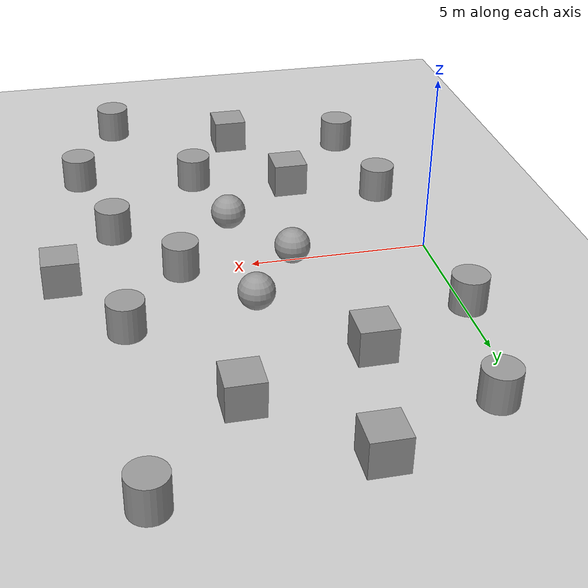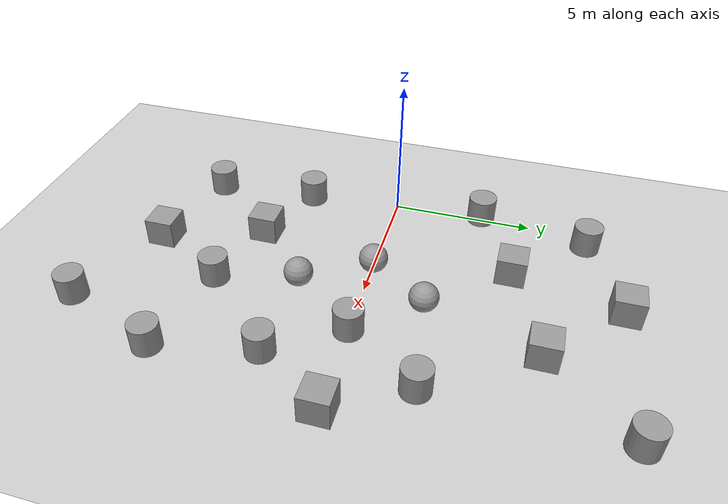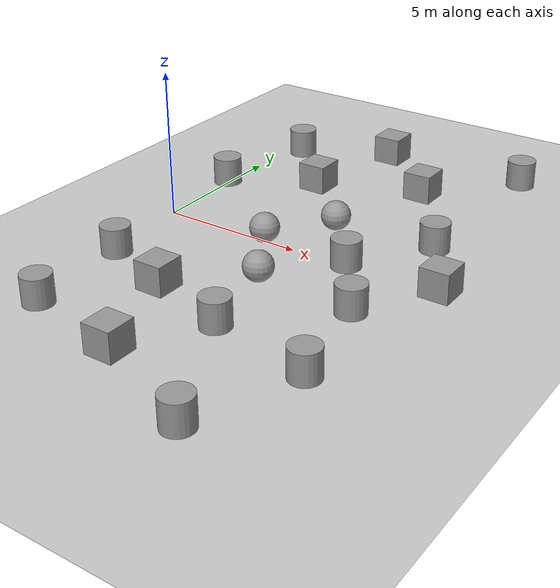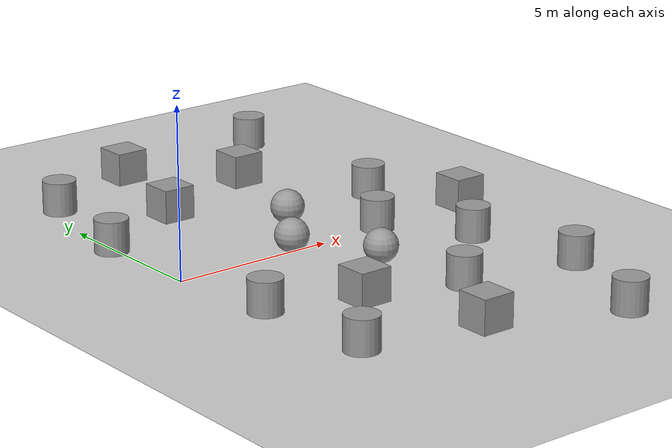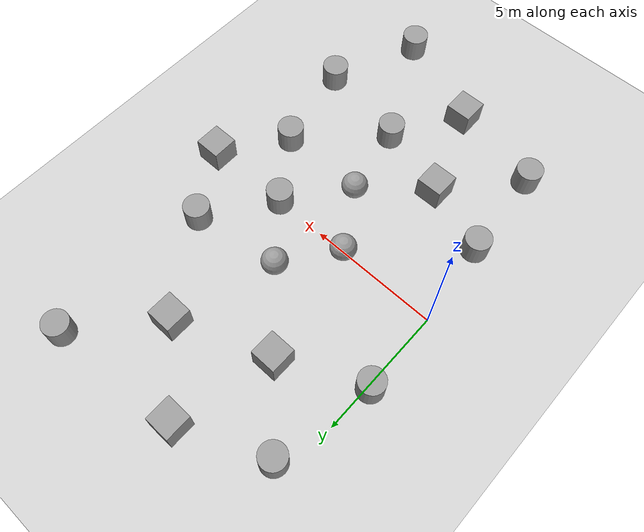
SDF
<sdf version="1.7">
 <world name="default">
  <light name="sun" type="directional">
   <pose>0 0 10 0 -0 0</pose>
   <diffuse>0.8 0.8 0.8 1</diffuse>
   <specular>0.2 0.2 0.2 1</specular>
   <attenuation>
    <range>1000</range>
    <constant>0.9</constant>
    <linear>0.01</linear>
    <quadratic>0.001</quadratic>
   </attenuation>
   <direction>-0.5 0.1 -0.9</direction>
   <spot><inner_angle>0</inner_angle><outer_angle>0</outer_angle><falloff>0</falloff></spot>
  </light>
  <model name="ground_plane">
   <static>1</static>
   <link name="link">
    <collision name="collision">
     <geometry><plane><normal>0 0 1</normal><size>100 100</size></plane></geometry>
     <surface>
      <contact><collide_bitmask>65535</collide_bitmask></contact>
      <friction><ode><mu>100</mu><mu2>50</mu2></ode></friction>
     </surface>
    </collision>
    <visual name="visual">
     <cast_shadows>0</cast_shadows>
     <geometry><plane><normal>0 0 1</normal><size>100 100</size></plane></geometry>
     <material>
      <script><uri>file://media/materials/scripts/gazebo.material</uri><name>Gazebo/Grey</name></script>
     </material>
    </visual>
   </link>
  </model>
  <gravity>0 0 -9.8</gravity>
  <magnetic_field>6e-06 2.3e-05 -4.2e-05</magnetic_field>
  <atmosphere type="adiabatic"/>
  <physics type="ode">
   <max_step_size>0.001</max_step_size>
   <real_time_factor>1</real_time_factor>
   <real_time_update_rate>1000</real_time_update_rate>
  </physics>
  <scene><ambient>0.4 0.4 0.4 1</ambient><background>0.7 0.7 0.7 1</background><shadows>1</shadows></scene>
  <audio><device>default</device></audio>
  <spherical_coordinates>
   <surface_model>EARTH_WGS84</surface_model>
   <latitude_deg>0</latitude_deg>
   <longitude_deg>0</longitude_deg>
   <elevation>0</elevation>
   <heading_deg>0</heading_deg>
  </spherical_coordinates>
  <model name="obstacle.world">
   <link name="link_0">
    <inertial>
     <mass>1</mass>
     <inertia><ixx>0.1</ixx><ixy>0</ixy><ixz>0</ixz><iyy>0.1</iyy><iyz>0</iyz><izz>0.1</izz></inertia>
    </inertial>
    <pose>-3.13284 -0.015745 0 0 -0 0</pose>
    <visual name="visual">
     <geometry><sphere><radius>0.5</radius></sphere></geometry>
     <material>
      <lighting>1</lighting>
      <script><uri>file://media/materials/scripts/gazebo.material</uri><name>Gazebo/Grey</name></script>
      <shader type="pixel"/>
     </material>
    </visual>
    <collision name="collision">
     <geometry><sphere><radius>0.5</radius></sphere></geometry>
     <surface>
      <friction>
       <ode><mu>1</mu><mu2>1</mu2><fdir1>0 0 0</fdir1><slip1>0</slip1><slip2>0</slip2></ode>
       <torsional>
        <coefficient>1</coefficient>
        <patch_radius>0</patch_radius>
        <surface_radius>0</surface_radius>
        <use_patch_radius>1</use_patch_radius>
        <ode><slip>0</slip></ode>
       </torsional>
      </friction>
      <bounce><restitution_coefficient>0</restitution_coefficient><threshold>1e+06</threshold></bounce>
      <contact>
       <collide_without_contact>0</collide_without_contact>
       <collide_without_contact_bitmask>1</collide_without_contact_bitmask>
       <collide_bitmask>1</collide_bitmask>
       <ode>
        <soft_cfm>0</soft_cfm>
        <soft_erp>0.2</soft_erp>
        <kp>1e+13</kp>
        <kd>1</kd>
        <max_vel>0.01</max_vel>
        <min_depth>0</min_depth>
       </ode>
       <bullet>
        <split_impulse>1</split_impulse>
        <split_impulse_penetration_threshold>-0.01</split_impulse_penetration_threshold>
        <soft_cfm>0</soft_cfm>
        <soft_erp>0.2</soft_erp>
        <kp>1e+13</kp>
        <kd>1</kd>
       </bullet>
      </contact>
     </surface>
    </collision>
   </link>
   <link name="link_1">
    <inertial>
     <mass>1</mass>
     <inertia><ixx>0.145833</ixx><ixy>0</ixy><ixz>0</ixz><iyy>0.145833</iyy><iyz>0</iyz><izz>0.125</izz></inertia>
    </inertial>
    <pose>-0.011051 -0.010594 0 0 -0 0</pose>
    <visual name="visual">
     <geometry><cylinder><radius>0.5</radius><length>1</length></cylinder></geometry>
     <material>
      <lighting>1</lighting>
      <script><uri>file://media/materials/scripts/gazebo.material</uri><name>Gazebo/Grey</name></script>
      <shader type="pixel"/>
     </material>
    </visual>
    <collision name="collision">
     <geometry><cylinder><radius>0.5</radius><length>1</length></cylinder></geometry>
     <surface>
      <friction>
       <ode><mu>1</mu><mu2>1</mu2><fdir1>0 0 0</fdir1><slip1>0</slip1><slip2>0</slip2></ode>
       <torsional>
        <coefficient>1</coefficient>
        <patch_radius>0</patch_radius>
        <surface_radius>0</surface_radius>
        <use_patch_radius>1</use_patch_radius>
        <ode><slip>0</slip></ode>
       </torsional>
      </friction>
      <bounce><restitution_coefficient>0</restitution_coefficient><threshold>1e+06</threshold></bounce>
      <contact>
       <collide_without_contact>0</collide_without_contact>
       <collide_without_contact_bitmask>1</collide_without_contact_bitmask>
       <collide_bitmask>1</collide_bitmask>
       <ode>
        <soft_cfm>0</soft_cfm>
        <soft_erp>0.2</soft_erp>
        <kp>1e+13</kp>
        <kd>1</kd>
        <max_vel>0.01</max_vel>
        <min_depth>0</min_depth>
       </ode>
       <bullet>
        <split_impulse>1</split_impulse>
        <split_impulse_penetration_threshold>-0.01</split_impulse_penetration_threshold>
        <soft_cfm>0</soft_cfm>
        <soft_erp>0.2</soft_erp>
        <kp>1e+13</kp>
        <kd>1</kd>
       </bullet>
      </contact>
     </surface>
    </collision>
   </link>
   <link name="link_2">
    <inertial>
     <mass>1</mass>
     <inertia>
      <ixx>0.166667</ixx>
      <ixy>0</ixy>
      <ixz>0</ixz>
      <iyy>0.166667</iyy>
      <iyz>0</iyz>
      <izz>0.166667</izz>
     </inertia>
    </inertial>
    <pose>3.23215 0.063462 0 0 -0 0</pose>
    <visual name="visual">
     <geometry><box><size>1 1 1</size></box></geometry>
     <material>
      <lighting>1</lighting>
      <script><uri>file://media/materials/scripts/gazebo.material</uri><name>Gazebo/Grey</name></script>
      <shader type="pixel"/>
     </material>
    </visual>
    <collision name="collision">
     <geometry><box><size>1 1 1</size></box></geometry>
     <surface>
      <friction>
       <ode><mu>1</mu><mu2>1</mu2><fdir1>0 0 0</fdir1><slip1>0</slip1><slip2>0</slip2></ode>
       <torsional>
        <coefficient>1</coefficient>
        <patch_radius>0</patch_radius>
        <surface_radius>0</surface_radius>
        <use_patch_radius>1</use_patch_radius>
        <ode><slip>0</slip></ode>
       </torsional>
      </friction>
      <bounce><restitution_coefficient>0</restitution_coefficient><threshold>1e+06</threshold></bounce>
      <contact>
       <collide_without_contact>0</collide_without_contact>
       <collide_without_contact_bitmask>1</collide_without_contact_bitmask>
       <collide_bitmask>1</collide_bitmask>
       <ode>
        <soft_cfm>0</soft_cfm>
        <soft_erp>0.2</soft_erp>
        <kp>1e+13</kp>
        <kd>1</kd>
        <max_vel>0.01</max_vel>
        <min_depth>0</min_depth>
       </ode>
       <bullet>
        <split_impulse>1</split_impulse>
        <split_impulse_penetration_threshold>-0.01</split_impulse_penetration_threshold>
        <soft_cfm>0</soft_cfm>
        <soft_erp>0.2</soft_erp>
        <kp>1e+13</kp>
        <kd>1</kd>
       </bullet>
      </contact>
     </surface>
    </collision>
   </link>
   <link name="link_3">
    <inertial>
     <mass>1</mass>
     <inertia><ixx>0.1</ixx><ixy>0</ixy><ixz>0</ixz><iyy>0.1</iyy><iyz>0</iyz><izz>0.1</izz></inertia>
    </inertial>
    <pose>-1.73792 -2.25954 0 0 -0 0</pose>
    <visual name="visual">
     <geometry><sphere><radius>0.5</radius></sphere></geometry>
     <material>
      <lighting>1</lighting>
      <script><uri>file://media/materials/scripts/gazebo.material</uri><name>Gazebo/Grey</name></script>
      <shader type="pixel"/>
     </material>
    </visual>
    <collision name="collision">
     <geometry><sphere><radius>0.5</radius></sphere></geometry>
     <surface>
      <friction>
       <ode><mu>1</mu><mu2>1</mu2><fdir1>0 0 0</fdir1><slip1>0</slip1><slip2>0</slip2></ode>
       <torsional>
        <coefficient>1</coefficient>
        <patch_radius>0</patch_radius>
        <surface_radius>0</surface_radius>
        <use_patch_radius>1</use_patch_radius>
        <ode><slip>0</slip></ode>
       </torsional>
      </friction>
      <bounce><restitution_coefficient>0</restitution_coefficient><threshold>1e+06</threshold></bounce>
      <contact>
       <collide_without_contact>0</collide_without_contact>
       <collide_without_contact_bitmask>1</collide_without_contact_bitmask>
       <collide_bitmask>1</collide_bitmask>
       <ode>
        <soft_cfm>0</soft_cfm>
        <soft_erp>0.2</soft_erp>
        <kp>1e+13</kp>
        <kd>1</kd>
        <max_vel>0.01</max_vel>
        <min_depth>0</min_depth>
       </ode>
       <bullet>
        <split_impulse>1</split_impulse>
        <split_impulse_penetration_threshold>-0.01</split_impulse_penetration_threshold>
        <soft_cfm>0</soft_cfm>
        <soft_erp>0.2</soft_erp>
        <kp>1e+13</kp>
        <kd>1</kd>
       </bullet>
      </contact>
     </surface>
    </collision>
   </link>
   <link name="link_4">
    <inertial>
     <mass>1</mass>
     <inertia><ixx>0.1</ixx><ixy>0</ixy><ixz>0</ixz><iyy>0.1</iyy><iyz>0</iyz><izz>0.1</izz></inertia>
    </inertial>
    <pose>-1.69793 2.03837 0 0 -0 0</pose>
    <visual name="visual">
     <geometry><sphere><radius>0.5</radius></sphere></geometry>
     <material>
      <lighting>1</lighting>
      <script><uri>file://media/materials/scripts/gazebo.material</uri><name>Gazebo/Grey</name></script>
      <shader type="pixel"/>
     </material>
    </visual>
    <collision name="collision">
     <geometry><sphere><radius>0.5</radius></sphere></geometry>
     <surface>
      <friction>
       <ode><mu>1</mu><mu2>1</mu2><fdir1>0 0 0</fdir1><slip1>0</slip1><slip2>0</slip2></ode>
       <torsional>
        <coefficient>1</coefficient>
        <patch_radius>0</patch_radius>
        <surface_radius>0</surface_radius>
        <use_patch_radius>1</use_patch_radius>
        <ode><slip>0</slip></ode>
       </torsional>
      </friction>
      <bounce><restitution_coefficient>0</restitution_coefficient><threshold>1e+06</threshold></bounce>
      <contact>
       <collide_without_contact>0</collide_without_contact>
       <collide_without_contact_bitmask>1</collide_without_contact_bitmask>
       <collide_bitmask>1</collide_bitmask>
       <ode>
        <soft_cfm>0</soft_cfm>
        <soft_erp>0.2</soft_erp>
        <kp>1e+13</kp>
        <kd>1</kd>
        <max_vel>0.01</max_vel>
        <min_depth>0</min_depth>
       </ode>
       <bullet>
        <split_impulse>1</split_impulse>
        <split_impulse_penetration_threshold>-0.01</split_impulse_penetration_threshold>
        <soft_cfm>0</soft_cfm>
        <soft_erp>0.2</soft_erp>
        <kp>1e+13</kp>
        <kd>1</kd>
       </bullet>
      </contact>
     </surface>
    </collision>
   </link>
   <link name="link_5">
    <inertial>
     <mass>1</mass>
     <inertia><ixx>0.145833</ixx><ixy>0</ixy><ixz>0</ixz><iyy>0.145833</iyy><iyz>0</iyz><izz>0.125</izz></inertia>
    </inertial>
    <pose>1.61127 -2.33825 0 0 -0 0</pose>
    <visual name="visual">
     <geometry><cylinder><radius>0.5</radius><length>1</length></cylinder></geometry>
     <material>
      <lighting>1</lighting>
      <script><uri>file://media/materials/scripts/gazebo.material</uri><name>Gazebo/Grey</name></script>
      <shader type="pixel"/>
     </material>
    </visual>
    <collision name="collision">
     <geometry><cylinder><radius>0.5</radius><length>1</length></cylinder></geometry>
     <surface>
      <friction>
       <ode><mu>1</mu><mu2>1</mu2><fdir1>0 0 0</fdir1><slip1>0</slip1><slip2>0</slip2></ode>
       <torsional>
        <coefficient>1</coefficient>
        <patch_radius>0</patch_radius>
        <surface_radius>0</surface_radius>
        <use_patch_radius>1</use_patch_radius>
        <ode><slip>0</slip></ode>
       </torsional>
      </friction>
      <bounce><restitution_coefficient>0</restitution_coefficient><threshold>1e+06</threshold></bounce>
      <contact>
       <collide_without_contact>0</collide_without_contact>
       <collide_without_contact_bitmask>1</collide_without_contact_bitmask>
       <collide_bitmask>1</collide_bitmask>
       <ode>
        <soft_cfm>0</soft_cfm>
        <soft_erp>0.2</soft_erp>
        <kp>1e+13</kp>
        <kd>1</kd>
        <max_vel>0.01</max_vel>
        <min_depth>0</min_depth>
       </ode>
       <bullet>
        <split_impulse>1</split_impulse>
        <split_impulse_penetration_threshold>-0.01</split_impulse_penetration_threshold>
        <soft_cfm>0</soft_cfm>
        <soft_erp>0.2</soft_erp>
        <kp>1e+13</kp>
        <kd>1</kd>
       </bullet>
      </contact>
     </surface>
    </collision>
   </link>
   <link name="link_6">
    <inertial>
     <mass>1</mass>
     <inertia><ixx>0.145833</ixx><ixy>0</ixy><ixz>0</ixz><iyy>0.145833</iyy><iyz>0</iyz><izz>0.125</izz></inertia>
    </inertial>
    <pose>1.73633 2.52229 0 0 -0 0</pose>
    <visual name="visual">
     <geometry><cylinder><radius>0.5</radius><length>1</length></cylinder></geometry>
     <material>
      <lighting>1</lighting>
      <script><uri>file://media/materials/scripts/gazebo.material</uri><name>Gazebo/Grey</name></script>
      <shader type="pixel"/>
     </material>
    </visual>
    <collision name="collision">
     <geometry><cylinder><radius>0.5</radius><length>1</length></cylinder></geometry>
     <surface>
      <friction>
       <ode><mu>1</mu><mu2>1</mu2><fdir1>0 0 0</fdir1><slip1>0</slip1><slip2>0</slip2></ode>
       <torsional>
        <coefficient>1</coefficient>
        <patch_radius>0</patch_radius>
        <surface_radius>0</surface_radius>
        <use_patch_radius>1</use_patch_radius>
        <ode><slip>0</slip></ode>
       </torsional>
      </friction>
      <bounce><restitution_coefficient>0</restitution_coefficient><threshold>1e+06</threshold></bounce>
      <contact>
       <collide_without_contact>0</collide_without_contact>
       <collide_without_contact_bitmask>1</collide_without_contact_bitmask>
       <collide_bitmask>1</collide_bitmask>
       <ode>
        <soft_cfm>0</soft_cfm>
        <soft_erp>0.2</soft_erp>
        <kp>1e+13</kp>
        <kd>1</kd>
        <max_vel>0.01</max_vel>
        <min_depth>0</min_depth>
       </ode>
       <bullet>
        <split_impulse>1</split_impulse>
        <split_impulse_penetration_threshold>-0.01</split_impulse_penetration_threshold>
        <soft_cfm>0</soft_cfm>
        <soft_erp>0.2</soft_erp>
        <kp>1e+13</kp>
        <kd>1</kd>
       </bullet>
      </contact>
     </surface>
    </collision>
   </link>
   <static>0</static>
   <pose>6.99306 0.048591 0.5 0 -0 0</pose>
  </model>
  <model name="unit_box">
   <pose>3.02014 -4.21684 0.499995 0 1e-05 0</pose>
   <link name="link">
    <inertial>
     <mass>1</mass>
     <inertia>
      <ixx>0.166667</ixx>
      <ixy>0</ixy>
      <ixz>0</ixz>
      <iyy>0.166667</iyy>
      <iyz>0</iyz>
      <izz>0.166667</izz>
     </inertia>
    </inertial>
    <collision name="collision"><geometry><box><size>1 1 1</size></box></geometry></collision>
    <visual name="visual">
     <geometry><box><size>1 1 1</size></box></geometry>
     <material>
      <script><name>Gazebo/Grey</name><uri>file://media/materials/scripts/gazebo.material</uri></script>
     </material>
    </visual>
   </link>
  </model>
  <model name="unit_cylinder">
   <pose>5.8398 -5.03716 0.499992 -3e-06 3e-06 0</pose>
   <link name="link">
    <inertial>
     <mass>1</mass>
     <inertia><ixx>0.145833</ixx><ixy>0</ixy><ixz>0</ixz><iyy>0.145833</iyy><iyz>0</iyz><izz>0.125</izz></inertia>
    </inertial>
    <collision name="collision">
     <geometry><cylinder><radius>0.5</radius><length>1</length></cylinder></geometry>
    </collision>
    <visual name="visual">
     <geometry><cylinder><radius>0.5</radius><length>1</length></cylinder></geometry>
     <material>
      <script><name>Gazebo/Grey</name><uri>file://media/materials/scripts/gazebo.material</uri></script>
     </material>
    </visual>
   </link>
  </model>
  <model name="unit_box_0">
   <pose>4.2683 -7.65107 0.499995 0 1e-05 0</pose>
   <link name="link">
    <inertial>
     <mass>1</mass>
     <inertia>
      <ixx>0.166667</ixx>
      <ixy>0</ixy>
      <ixz>0</ixz>
      <iyy>0.166667</iyy>
      <iyz>0</iyz>
      <izz>0.166667</izz>
     </inertia>
    </inertial>
    <collision name="collision"><geometry><box><size>1 1 1</size></box></geometry></collision>
    <visual name="visual">
     <geometry><box><size>1 1 1</size></box></geometry>
     <material>
      <script><name>Gazebo/Grey</name><uri>file://media/materials/scripts/gazebo.material</uri></script>
     </material>
    </visual>
   </link>
  </model>
  <model name="unit_cylinder_0">
   <pose>9.33923 -5.73256 0.499998 3e-06 -3e-06 0</pose>
   <link name="link">
    <inertial>
     <mass>1</mass>
     <inertia><ixx>0.145833</ixx><ixy>0</ixy><ixz>0</ixz><iyy>0.145833</iyy><iyz>0</iyz><izz>0.125</izz></inertia>
    </inertial>
    <collision name="collision">
     <geometry><cylinder><radius>0.5</radius><length>1</length></cylinder></geometry>
    </collision>
    <visual name="visual">
     <geometry><cylinder><radius>0.5</radius><length>1</length></cylinder></geometry>
     <material>
      <script><name>Gazebo/Grey</name><uri>file://media/materials/scripts/gazebo.material</uri></script>
     </material>
    </visual>
   </link>
  </model>
  <model name="unit_box_1">
   <pose>2.91845 4.63691 0.499995 0 1e-05 0</pose>
   <link name="link">
    <inertial>
     <mass>1</mass>
     <inertia>
      <ixx>0.166667</ixx>
      <ixy>0</ixy>
      <ixz>0</ixz>
      <iyy>0.166667</iyy>
      <iyz>0</iyz>
      <izz>0.166667</izz>
     </inertia>
    </inertial>
    <collision name="collision"><geometry><box><size>1 1 1</size></box></geometry></collision>
    <visual name="visual">
     <geometry><box><size>1 1 1</size></box></geometry>
     <material>
      <script><name>Gazebo/Grey</name><uri>file://media/materials/scripts/gazebo.material</uri></script>
     </material>
    </visual>
   </link>
  </model>
  <model name="unit_box_2">
   <pose>6.43969 5.99158 0.499995 -1e-05 -0 -0</pose>
   <link name="link">
    <inertial>
     <mass>1</mass>
     <inertia>
      <ixx>0.166667</ixx>
      <ixy>0</ixy>
      <ixz>0</ixz>
      <iyy>0.166667</iyy>
      <iyz>0</iyz>
      <izz>0.166667</izz>
     </inertia>
    </inertial>
    <collision name="collision"><geometry><box><size>1 1 1</size></box></geometry></collision>
    <visual name="visual">
     <geometry><box><size>1 1 1</size></box></geometry>
     <material>
      <script><name>Gazebo/Grey</name><uri>file://media/materials/scripts/gazebo.material</uri></script>
     </material>
    </visual>
   </link>
  </model>
  <model name="unit_box_3">
   <pose>3.83466 8.40263 0.499995 0 1e-05 0</pose>
   <link name="link">
    <inertial>
     <mass>1</mass>
     <inertia>
      <ixx>0.166667</ixx>
      <ixy>0</ixy>
      <ixz>0</ixz>
      <iyy>0.166667</iyy>
      <iyz>0</iyz>
      <izz>0.166667</izz>
     </inertia>
    </inertial>
    <collision name="collision"><geometry><box><size>1 1 1</size></box></geometry></collision>
    <visual name="visual">
     <geometry><box><size>1 1 1</size></box></geometry>
     <material>
      <script><name>Gazebo/Grey</name><uri>file://media/materials/scripts/gazebo.material</uri></script>
     </material>
    </visual>
   </link>
  </model>
  <model name="unit_cylinder_1">
   <pose>8.92565 8.81858 0.499992 -3e-06 4e-06 0</pose>
   <link name="link">
    <inertial>
     <mass>1</mass>
     <inertia><ixx>0.145833</ixx><ixy>0</ixy><ixz>0</ixz><iyy>0.145833</iyy><iyz>0</iyz><izz>0.125</izz></inertia>
    </inertial>
    <collision name="collision">
     <geometry><cylinder><radius>0.5</radius><length>1</length></cylinder></geometry>
    </collision>
    <visual name="visual">
     <geometry><cylinder><radius>0.5</radius><length>1</length></cylinder></geometry>
     <material>
      <script><name>Gazebo/Grey</name><uri>file://media/materials/scripts/gazebo.material</uri></script>
     </material>
    </visual>
   </link>
  </model>
  <model name="unit_cylinder_2">
   <pose>7.97183 -9.18913 0.499992 -3e-06 -4e-06 -0</pose>
   <link name="link">
    <inertial>
     <mass>1</mass>
     <inertia><ixx>0.145833</ixx><ixy>0</ixy><ixz>0</ixz><iyy>0.145833</iyy><iyz>0</iyz><izz>0.125</izz></inertia>
    </inertial>
    <collision name="collision">
     <geometry><cylinder><radius>0.5</radius><length>1</length></cylinder></geometry>
    </collision>
    <visual name="visual">
     <geometry><cylinder><radius>0.5</radius><length>1</length></cylinder></geometry>
     <material>
      <script><name>Gazebo/Grey</name><uri>file://media/materials/scripts/gazebo.material</uri></script>
     </material>
    </visual>
   </link>
  </model>
  <model name="unit_cylinder_3">
   <pose>0.425124 -3.26464 0.499993 -3e-06 -3e-06 0</pose>
   <link name="link">
    <inertial>
     <mass>1</mass>
     <inertia><ixx>0.145833</ixx><ixy>0</ixy><ixz>0</ixz><iyy>0.145833</iyy><iyz>0</iyz><izz>0.125</izz></inertia>
    </inertial>
    <collision name="collision">
     <geometry><cylinder><radius>0.5</radius><length>1</length></cylinder></geometry>
    </collision>
    <visual name="visual">
     <geometry><cylinder><radius>0.5</radius><length>1</length></cylinder></geometry>
     <material>
      <script><name>Gazebo/Grey</name><uri>file://media/materials/scripts/gazebo.material</uri></script>
     </material>
    </visual>
   </link>
  </model>
  <model name="unit_cylinder_4">
   <pose>0.727452 -6.89707 0.499997 3e-06 4e-06 -0</pose>
   <link name="link">
    <inertial>
     <mass>1</mass>
     <inertia><ixx>0.145833</ixx><ixy>0</ixy><ixz>0</ixz><iyy>0.145833</iyy><iyz>0</iyz><izz>0.125</izz></inertia>
    </inertial>
    <collision name="collision">
     <geometry><cylinder><radius>0.5</radius><length>1</length></cylinder></geometry>
    </collision>
    <visual name="visual">
     <geometry><cylinder><radius>0.5</radius><length>1</length></cylinder></geometry>
     <material>
      <script><name>Gazebo/Grey</name><uri>file://media/materials/scripts/gazebo.material</uri></script>
     </material>
    </visual>
   </link>
  </model>
  <model name="unit_cylinder_5">
   <pose>-0.099596 3.19665 0.499997 3e-06 4e-06 -0</pose>
   <link name="link">
    <inertial>
     <mass>1</mass>
     <inertia><ixx>0.145833</ixx><ixy>0</ixy><ixz>0</ixz><iyy>0.145833</iyy><iyz>0</iyz><izz>0.125</izz></inertia>
    </inertial>
    <collision name="collision">
     <geometry><cylinder><radius>0.5</radius><length>1</length></cylinder></geometry>
    </collision>
    <visual name="visual">
     <geometry><cylinder><radius>0.5</radius><length>1</length></cylinder></geometry>
     <material>
      <script><name>Gazebo/Grey</name><uri>file://media/materials/scripts/gazebo.material</uri></script>
     </material>
    </visual>
   </link>
  </model>
  <model name="unit_cylinder_6">
   <pose>0.626288 7.02557 0.499997 3e-06 4e-06 -0</pose>
   <link name="link">
    <inertial>
     <mass>1</mass>
     <inertia><ixx>0.145833</ixx><ixy>0</ixy><ixz>0</ixz><iyy>0.145833</iyy><iyz>0</iyz><izz>0.125</izz></inertia>
    </inertial>
    <collision name="collision">
     <geometry><cylinder><radius>0.5</radius><length>1</length></cylinder></geometry>
    </collision>
    <visual name="visual">
     <geometry><cylinder><radius>0.5</radius><length>1</length></cylinder></geometry>
     <material>
      <script><name>Gazebo/Grey</name><uri>file://media/materials/scripts/gazebo.material</uri></script>
     </material>
    </visual>
   </link>
  </model>
 </world>
</sdf>
